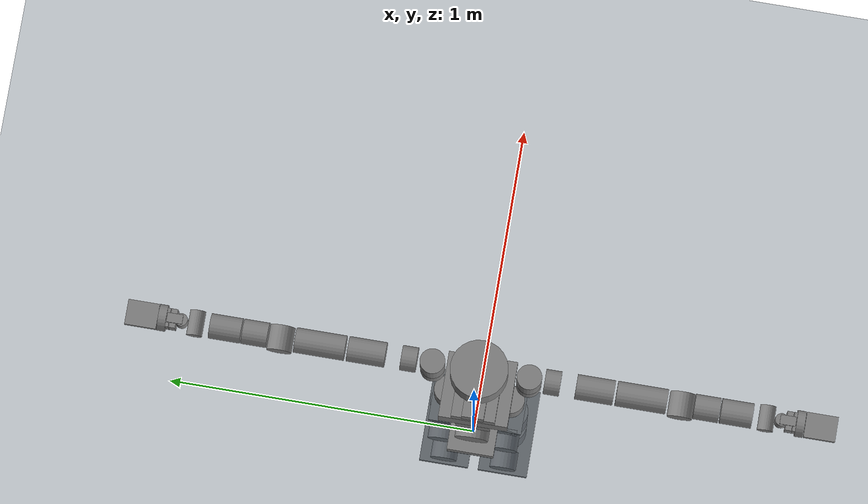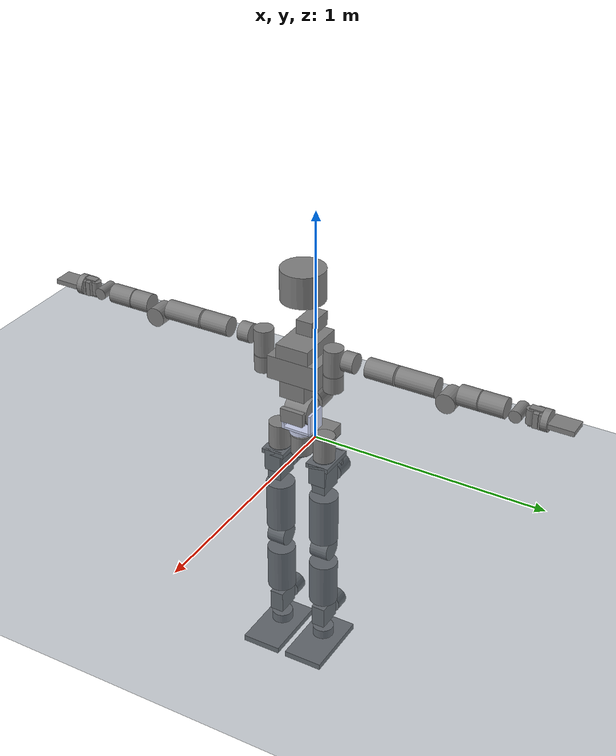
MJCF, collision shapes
<mujoco model="tocabi">
  <compiler angle="radian"/>

  <visual>
    <headlight diffuse="0.6 0.6 0.6" ambient="0.1 0.1 0.1" specular="0.9 0.9 0.9"/>
    <rgba haze="0.15 0.25 0.35 1"/>
    <global azimuth="-140" elevation="-20"/>
  </visual>

  <asset>
    <texture name="texplane" builtin="checker" height="512" width="512" rgb1=".2 .3 .4" rgb2=".1 .15 .2" type="2d"/>
    <material name="MatPlane" reflectance="0.5" shininess="0.01" specular="0.1" texrepeat="1 1" texture="texplane" texuniform="true"/>
    <mesh name="Pelvis_link2" content_type="model/obj" file="meshes/obj/Pelvis_link2.obj"/>
    <mesh name="HipRoll_L_Link" content_type="model/obj" file="meshes/obj/HipRoll_L_Link.obj"/>
    <mesh name="HipCenter_L_Link" content_type="model/obj" file="meshes/obj/HipCenter_L_Link.obj"/>
    <mesh name="Thigh_L_Link" content_type="model/obj" file="meshes/obj/Thigh_L_Link.obj"/>
    <mesh name="Knee_L_Link" content_type="model/obj" file="meshes/obj/Knee_L_Link.obj"/>
    <mesh name="AnkleCenter_L_Link" content_type="model/obj" file="meshes/obj/AnkleCenter_L_Link.obj"/>
    <mesh name="AnkleRoll_L_Link" content_type="model/obj" file="meshes/obj/AnkleRoll_L_Link.obj"/>
    <mesh name="Foot_Link" content_type="model/obj" file="meshes/obj/Foot_Link.obj"/>
    <mesh name="HipRoll_R_Link" content_type="model/obj" file="meshes/obj/HipRoll_R_Link.obj"/>
    <mesh name="HipCenter_R_Link" content_type="model/obj" file="meshes/obj/HipCenter_R_Link.obj"/>
    <mesh name="Thigh_R_Link" content_type="model/obj" file="meshes/obj/Thigh_R_Link.obj"/>
    <mesh name="Knee_R_Link" content_type="model/obj" file="meshes/obj/Knee_R_Link.obj"/>
    <mesh name="AnkleCenter_R_Link" content_type="model/obj" file="meshes/obj/AnkleCenter_R_Link.obj"/>
    <mesh name="AnkleRoll_R_Link" content_type="model/obj" file="meshes/obj/AnkleRoll_R_Link.obj"/>
    <mesh name="waist1" content_type="model/obj" file="meshes/obj/waist1.obj"/>
    <mesh name="waist2" content_type="model/obj" file="meshes/obj/waist2.obj"/>
    <mesh name="upperbody" content_type="model/obj" file="meshes/obj/upperbody.obj"/>
    <mesh name="L_shoulder1" content_type="model/obj" file="meshes/obj/L_shoulder1.obj"/>
    <mesh name="L_shoulder2" content_type="model/obj" file="meshes/obj/L_shoulder2.obj"/>
    <mesh name="L_shoulder3" content_type="model/obj" file="meshes/obj/L_shoulder3.obj"/>
    <mesh name="L_arm" content_type="model/obj" file="meshes/obj/L_arm.obj"/>
    <mesh name="L_elbow" content_type="model/obj" file="meshes/obj/L_elbow.obj"/>
    <mesh name="L_forearm" content_type="model/obj" file="meshes/obj/L_forearm.obj"/>
    <mesh name="L_wrist1" content_type="model/obj" file="meshes/obj/L_wrist1.obj"/>
    <mesh name="neck" content_type="model/obj" file="meshes/obj/neck.obj"/>
    <mesh name="head_v1" content_type="model/obj" file="meshes/obj/head_v1.obj"/>
    <mesh name="R_shoulder1" content_type="model/obj" file="meshes/obj/R_shoulder1.obj"/>
    <mesh name="R_shoulder2" content_type="model/obj" file="meshes/obj/R_shoulder2.obj"/>
    <mesh name="R_shoulder3" content_type="model/obj" file="meshes/obj/R_shoulder3.obj"/>
    <mesh name="R_arm" content_type="model/obj" file="meshes/obj/R_arm.obj"/>
    <mesh name="R_elbow" content_type="model/obj" file="meshes/obj/R_elbow.obj"/>
    <mesh name="R_forearm" content_type="model/obj" file="meshes/obj/R_forearm.obj"/>
    <mesh name="R_wrist1" content_type="model/obj" file="meshes/obj/R_wrist1.obj"/>
  </asset>

  <worldbody>
    <geom name="ground" type="plane" size="10 10 0.1" pos="0 0 0" material="MatPlane"/>
    <light pos="0 0 1000" castshadow="true"/>
    <body name="Pelvis_Link">
      <inertial pos="0.07809 0 0.03985" quat="0.478118 0.476462 -0.52201 0.521433" mass="12.1952" diaginertia="0.14482 0.101492 0.0724004"/>
      <joint name="floating_base_joint" type="free"/>
      <geom pos="0.11 0 0.02" quat="1 0 0 0" type="mesh" contype="0" conaffinity="0" group="1" density="0" mesh="Pelvis_link2"/>
      <geom size="0.045 0.044" pos="0.11 0 0.039" type="cylinder"/>
      <geom size="0.045 0.055" pos="0.11 0.1025 0.05" type="cylinder"/>
      <geom size="0.045 0.055" pos="0.11 -0.1025 0.05" type="cylinder"/>
      <geom size="0.06 0.07625 0.0275" pos="-0.015 0 0.02" type="box"/>
      <body name="L_HipRoll_Link" pos="0.11 0.1025 -0.1025">
        <inertial pos="-0.06477 0 0.05149" quat="-4.55125e-06 0.706109 4.5641e-06 0.708103" mass="2.679" diaginertia="0.114073 0.114073 0.114073"/>
        <joint name="L_HipYaw_Joint" pos="0 0 0" axis="0 0 1" range="-3.14 3.14" actuatorfrcrange="-333 333" damping="1"/>
        <geom type="mesh" contype="0" conaffinity="0" group="1" density="0" mesh="HipRoll_L_Link"/>
        <geom size="0.045 0.04" pos="-0.1 0 0" quat="0.707107 0 0.707107 0" type="cylinder"/>
        <geom size="0.077 0.05 0.01" pos="-0.016 0 0.085" type="box"/>
        <geom size="0.006 0.036 0.0475" pos="0.055 0 0.0475" type="box"/>
        <geom size="0.006 0.036 0.0475" pos="-0.087 0 0.0475" type="box"/>
        <body name="L_HipCenter_Link">
          <inertial pos="-0.04801 0.0022 2e-05" quat="0.999982 -0.00595644 4.6683e-06 -2.7807e-08" mass="2.67" diaginertia="0.124407 0.124407 0.124407"/>
          <joint name="L_HipRoll_Joint" pos="0 0 0" axis="1 0 0" range="-3.14 3.14" actuatorfrcrange="-232 232" damping="1"/>
          <geom type="mesh" contype="0" conaffinity="0" group="1" density="0" mesh="HipCenter_L_Link"/>
          <geom size="0.05225 0.03 0.0475" pos="-0.0045 0 0" type="box"/>
          <body name="L_Thigh_Link">
            <inertial pos="-0.00042 0.00032 -0.18904" quat="0.707068 0.00145661 -0.000977354 0.707144" mass="5.366" diaginertia="0.339107 0.339107 0.339107"/>
            <joint name="L_HipPitch_Joint" pos="0 0 0" axis="0 1 0" range="-3.14 3.14" actuatorfrcrange="-263 263" damping="1"/>
            <geom type="mesh" contype="0" conaffinity="0" group="1" density="0" mesh="Thigh_L_Link"/>
            <geom size="0.049 0.038815" pos="0 0 -0.35" quat="0.707107 0.707107 0 0" type="cylinder"/>
            <geom size="0.06 0.10875" pos="0 0 -0.1923" type="cylinder"/>
            <body name="L_Knee_Link" pos="0 0 -0.35">
              <inertial pos="0.00429 -0.00214 -0.1428" quat="0.707067 0.00548297 0.00738884 0.707087" mass="3.883" diaginertia="0.23895 0.23895 0.23895"/>
              <joint name="L_Knee_Joint" pos="0 0 0" axis="0 1 0" range="-3.14 3.14" actuatorfrcrange="-289 289" damping="1"/>
              <geom type="mesh" contype="0" conaffinity="0" group="1" density="0" mesh="Knee_L_Link"/>
              <geom size="0.06 0.1" pos="0 0 -0.175" type="cylinder"/>
              <body name="L_AnkleCenter_Link" pos="0 0 -0.35">
                <inertial pos="-0.00419 0.0018 -0.0003" quat="0.498858 0.50114 0.501134 0.498863" mass="2.51" diaginertia="0.139901 0.139901 0.139901"/>
                <joint name="L_AnklePitch_Joint" pos="0 0 0" axis="0 1 0" range="-3.14 3.14" actuatorfrcrange="-222 222" damping="1"/>
                <geom type="mesh" contype="0" conaffinity="0" group="1" density="0" mesh="AnkleCenter_L_Link"/>
                <geom size="0.05225 0.03 0.0475" pos="-0.0045 0 0" type="box"/>
                <body name="L_AnkleRoll_Link">
                  <inertial pos="-0.00780159 6.94359e-05 -0.0860385" quat="0.36349 0.606978 0.605974 0.36366" mass="3.59026" diaginertia="0.168928 0.165268 0.153237"/>
                  <joint name="L_AnkleRoll_Joint" pos="0 0 0" axis="1 0 0" range="-3.14 3.14" actuatorfrcrange="-166 166" damping="1"/>
                  <geom type="mesh" contype="0" conaffinity="0" group="1" density="0" mesh="AnkleRoll_L_Link"/>
                  <geom size="0.045 0.03125" pos="-0.08875 0 0" quat="0.707107 0 -0.707107 0" type="cylinder"/>
                  <geom type="mesh" contype="0" conaffinity="0" group="1" density="0" mesh="Foot_Link"/>
                  <geom size="0.045 0.02125" pos="0 0 -0.1" type="cylinder"/>
                  <geom size="0.15 0.085 0.0135" pos="0.03 0 -0.145" type="box"/>
                </body>
              </body>
            </body>
          </body>
        </body>
      </body>
      <body name="R_HipRoll_Link" pos="0.11 -0.1025 -0.1025">
        <inertial pos="-0.06477 0 0.05149" quat="-4.55125e-06 0.706109 4.5641e-06 0.708103" mass="2.679" diaginertia="0.114073 0.114073 0.114073"/>
        <joint name="R_HipYaw_Joint" pos="0 0 0" axis="0 0 1" range="-3.14 3.14" actuatorfrcrange="-333 333" damping="1"/>
        <geom type="mesh" contype="0" conaffinity="0" group="1" density="0" mesh="HipRoll_R_Link"/>
        <geom size="0.045 0.04" pos="-0.1 0 0" quat="0.707107 0 0.707107 0" type="cylinder"/>
        <geom size="0.077 0.05 0.01" pos="-0.016 0 0.085" type="box"/>
        <geom size="0.006 0.036 0.0475" pos="0.055 0 0.0475" type="box"/>
        <geom size="0.006 0.036 0.0475" pos="-0.087 0 0.0475" type="box"/>
        <body name="R_HipCenter_Link" quat="1 0 0 0">
          <inertial pos="-0.04801 -0.0022 2e-05" quat="0.999982 -0.00595644 4.6683e-06 -2.7807e-08" mass="2.67" diaginertia="0.124407 0.124407 0.124407"/>
          <joint name="R_HipRoll_Joint" pos="0 0 0" axis="1 0 0" range="-3.14 3.14" actuatorfrcrange="-232 232" damping="1"/>
          <geom type="mesh" contype="0" conaffinity="0" group="1" density="0" mesh="HipCenter_R_Link"/>
          <geom size="0.05225 0.03 0.0475" pos="-0.0045 0 0" type="box"/>
          <body name="R_Thigh_Link" quat="1 0 0 0">
            <inertial pos="-0.00042 -0.00032 -0.18904" quat="0.707068 0.00145661 -0.000977354 0.707144" mass="5.366" diaginertia="0.339107 0.339107 0.339107"/>
            <joint name="R_HipPitch_Joint" pos="0 0 0" axis="0 1 0" range="-3.14 3.14" actuatorfrcrange="-263 263" damping="1"/>
            <geom type="mesh" contype="0" conaffinity="0" group="1" density="0" mesh="Thigh_R_Link"/>
            <geom size="0.049 0.038815" pos="0 0 -0.35" quat="0.707107 0.707107 0 0" type="cylinder"/>
            <geom size="0.06 0.10875" pos="0 0 -0.1923" type="cylinder"/>
            <body name="R_Knee_Link" pos="0 0 -0.35">
              <inertial pos="0.00429 0.00214 -0.1428" quat="0.707067 0.00548297 0.00738884 0.707087" mass="3.883" diaginertia="0.23895 0.23895 0.23895"/>
              <joint name="R_Knee_Joint" pos="0 0 0" axis="0 1 0" range="-3.14 3.14" actuatorfrcrange="-289 289" damping="1"/>
              <geom type="mesh" contype="0" conaffinity="0" group="1" density="0" mesh="Knee_R_Link"/>
              <geom size="0.06 0.1" pos="0 0 -0.175" type="cylinder"/>
              <body name="R_AnkleCenter_Link" pos="0 0 -0.35" quat="1 0 0 0">
                <inertial pos="-0.00419 -0.0018 -0.0003" quat="0.498858 0.50114 0.501134 0.498863" mass="2.51" diaginertia="0.139901 0.139901 0.139901"/>
                <joint name="R_AnklePitch_Joint" pos="0 0 0" axis="0 1 0" range="-3.14 3.14" actuatorfrcrange="-222 222" damping="1"/>
                <geom type="mesh" contype="0" conaffinity="0" group="1" density="0" mesh="AnkleCenter_R_Link"/>
                <geom size="0.05225 0.03 0.0475" pos="-0.0045 0 0" type="box"/>
                <body name="R_AnkleRoll_Link">
                  <inertial pos="-0.00780159 6.94359e-05 -0.0860385" quat="0.36349 0.606978 0.605974 0.36366" mass="3.59026" diaginertia="0.168928 0.165268 0.153237"/>
                  <joint name="R_AnkleRoll_Joint" pos="0 0 0" axis="1 0 0" range="-3.14 3.14" actuatorfrcrange="-166 166" damping="1"/>
                  <geom type="mesh" contype="0" conaffinity="0" group="1" density="0" mesh="AnkleRoll_R_Link"/>
                  <geom size="0.045 0.03125" pos="-0.08875 0 0" quat="0.707107 0 -0.707107 0" type="cylinder"/>
                  <geom type="mesh" contype="0" conaffinity="0" group="1" density="0" mesh="Foot_Link"/>
                  <geom size="0.045 0.02125" pos="0 0 -0.1" type="cylinder"/>
                  <geom size="0.15 0.085 0.0135" pos="0.03 0 -0.145" type="box"/>
                </body>
              </body>
            </body>
          </body>
        </body>
      </body>
      <body name="Waist1_Link" pos="0.11 0 0.1979">
        <inertial pos="0 0 -0.03647" quat="0.503317 0.49668 -0.503508 0.496449" mass="0.89722" diaginertia="0.337833 0.337833 0.337833"/>
        <joint name="Waist1_Joint" pos="0 0 0" axis="0 0 1" range="-2.094 2.094" actuatorfrcrange="-303 303" damping="1"/>
        <geom type="mesh" contype="0" conaffinity="0" group="1" density="0" mesh="waist1"/>
        <geom size="0.05 0.01" pos="0 0 -0.096" type="cylinder" contype="0" conaffinity="0" group="1" density="0" rgba="0.792157 0.819608 0.933333 1"/>
        <geom size="0.05 0.01" pos="0 0 -0.096" type="cylinder" rgba="0.792157 0.819608 0.933333 1"/>
        <geom size="0.047 0.065 0.005" pos="0 0 -0.081" type="box" rgba="0.792157 0.819608 0.933333 1"/>
        <geom size="0.047 0.005 0.0455" pos="0 0.06 -0.0405" type="box" rgba="0.792157 0.819608 0.933333 1"/>
        <geom size="0.047 0.005 0.0455" pos="0 -0.06 -0.0405" type="box" rgba="0.792157 0.819608 0.933333 1"/>
        <body name="Waist2_Link">
          <inertial pos="-0.00029 0 0" quat="0.500003 0.500003 0.499997 0.499997" mass="3.752" diaginertia="0.341764 0.341764 0.341764"/>
          <joint name="Waist2_Joint" pos="0 0 0" axis="0 1 0" range="-2.094 2.094" actuatorfrcrange="-303 303" damping="1"/>
          <geom type="mesh" contype="0" conaffinity="0" group="1" density="0" mesh="waist2"/>
          <geom size="0.055 0.05" quat="0.707107 0.707107 0 0" type="cylinder"/>
          <geom size="0.01 0.05 0.03" pos="0.07 0 0" type="box"/>
          <geom size="0.054 0.045" pos="-0.115 0 0" quat="0.707107 0 0.707107 0" type="cylinder"/>
          <body name="Upperbody_Link">
            <inertial pos="-0.0608 0.0017 0.1077" quat="0.983619 0.00362339 0.180208 0.00228502" mass="20.034" diaginertia="0.325001 0.293503 0.197696"/>
            <joint name="Upperbody_Joint" pos="0 0 0" axis="-1 0 0" range="-2.094 2.094" actuatorfrcrange="-303 303" damping="1"/>
            <geom type="mesh" contype="0" conaffinity="0" group="1" density="0" mesh="upperbody"/>
            <geom size="0.105 0.11 0.05" pos="-0.03 0 0.2" type="box" contype="0" conaffinity="0" group="1" density="0"/>
            <geom size="0.105 0.055 0.035" pos="-0.03 0 0.115" type="box" contype="0" conaffinity="0" group="1" density="0"/>
            <geom size="0.105 0.07 0.03" pos="-0.03 0 0.28" type="box" contype="0" conaffinity="0" group="1" density="0"/>
            <geom size="0.105 0.11 0.05" pos="-0.03 0 0.2" type="box"/>
            <geom size="0.105 0.055 0.035" pos="-0.03 0 0.115" type="box"/>
            <geom size="0.105 0.07 0.03" pos="-0.03 0 0.28" type="box"/>
            <geom size="0.06 0.035 0.03" pos="-0.08 0 0.35" type="box"/>
            <geom size="0.04 0.035" pos="0.023 0.154 0.185" type="cylinder"/>
            <geom size="0.04 0.035" pos="0.023 -0.154 0.185" type="cylinder"/>
            <body name="L_Shoulder1_Link" pos="0.023 0.154 0.2275">
              <inertial pos="-3e-05 0.00397 0.06029" quat="0.0454 0.705652 -0.0450956 0.705663" mass="1.6762" diaginertia="0.0630641 0.0630641 0.0630641"/>
              <joint name="L_Shoulder1_Joint" pos="0 0 0" axis="0 0 1" range="-2.09 1.54" actuatorfrcrange="-64 64" damping="1"/>
              <geom type="mesh" contype="0" conaffinity="0" group="1" density="0" mesh="L_shoulder1"/>
              <geom size="0.04 0.055" pos="0 0 0.05" type="cylinder"/>
              <body name="L_Shoulder2_Link" pos="0 0.0341 0.065">
                <inertial pos="0.00107 0.0491 -1e-05" quat="0.501533 0.49854 0.498463 0.501456" mass="0.4016" diaginertia="0.0621111 0.0621111 0.0621111"/>
                <joint name="L_Shoulder2_Joint" pos="0 0 0" axis="0 1 0" range="-3.14159 3.14159" actuatorfrcrange="-64 64" damping="1"/>
                <geom type="mesh" contype="0" conaffinity="0" group="1" density="0" mesh="L_shoulder2"/>
                <geom size="0.04 0.025" pos="0 0.04 0" quat="0.707107 0.707107 0 0" type="cylinder"/>
                <body name="L_Shoulder3_Link" pos="0 0.115 0">
                  <inertial pos="0.00262 0.04826 0.00023" quat="0.705654 0.708556 -0.000676974 -0.000684567" mass="2.90141" diaginertia="0.0676279 0.0676279 0.0676279"/>
                  <joint name="L_Shoulder3_Joint" pos="0 0 0" axis="-1 0 0" range="-1.9199 1.9199" actuatorfrcrange="-64 64" damping="1"/>
                  <geom type="mesh" contype="0" conaffinity="0" group="1" density="0" mesh="L_shoulder3"/>
                  <geom size="0.04 0.06" pos="0 0.06 0" quat="0.707107 0.707107 0 0" type="cylinder"/>
                  <body name="L_Armlink_Link" pos="0 0.1281 0">
                    <inertial pos="-0.01896 0.11642 -0.0119" quat="0.535859 0.462264 0.460318 0.53598" mass="0.58517" diaginertia="0.0634592 0.0634592 0.0634592"/>
                    <joint name="L_Armlink_Joint" pos="0 0 0" axis="0 1 0" range="-3.14159 3.14159" actuatorfrcrange="-64 64" damping="1"/>
                    <geom type="mesh" contype="0" conaffinity="0" group="1" density="0" mesh="L_arm"/>
                    <geom size="0.04 0.08" pos="0 0.08 0" quat="0.707107 0.707107 0 0" type="cylinder"/>
                    <body name="L_Elbow_Link" pos="0 0.207 -0.0325">
                      <inertial pos="-0.00136 0.05256 0.01764" quat="0.811557 0.584271 0.00034747 0.00150314" mass="2.06511" diaginertia="0.0212399 0.0212399 0.0212399"/>
                      <joint name="L_Elbow_Joint" pos="0 0 0" axis="1 0 0" range="-3.14159 2.8" actuatorfrcrange="-23 23" damping="1"/>
                      <geom type="mesh" contype="0" conaffinity="0" group="1" density="0" mesh="L_elbow"/>
                      <geom size="0.04 0.04" pos="0 0.08 0.0325" quat="0.707107 0.707107 0 0" type="cylinder"/>
                      <geom size="0.04 0.04" quat="0.707107 0 0.707107 0" type="cylinder"/>
                      <body name="L_Forearm_Link" pos="0 0.1244 0.0325">
                        <inertial pos="-0.01426 0.0767 0.00033" quat="0.474096 0.525451 0.524351 0.473487" mass="0.35234" diaginertia="0.0174032 0.0174032 0.0174032"/>
                        <joint name="L_Forearm_Joint" pos="0 0 0" axis="0 1 0" range="-3.14159 3.14159" actuatorfrcrange="-23 23" damping="1"/>
                        <geom type="mesh" contype="0" conaffinity="0" group="1" density="0" mesh="L_forearm"/>
                        <geom size="0.04 0.05" pos="0 0.05 0" quat="0.707107 0.707107 0 0" type="cylinder"/>
                        <geom size="0.025 0.04" pos="0 0.1451 0" quat="0.707107 0 0.707107 0" type="cylinder"/>
                        <body name="L_Wrist1_Link" pos="0 0.1451 0">
                          <inertial pos="-0.00158 0.02153 3e-05" quat="0.707955 0.706258 0.000583865 0.000572501" mass="0.70923" diaginertia="0.00542825 0.00542825 0.00542825"/>
                          <joint name="L_Wrist1_Joint" pos="0 0 0" axis="1 0 0" range="-3.14159 3.14159" actuatorfrcrange="-10 10" damping="1"/>
                          <geom type="mesh" contype="0" conaffinity="0" group="1" density="0" mesh="L_wrist1"/>
                          <geom size="0.02 0.03" pos="0 0.046 0" type="cylinder"/>
                          <body name="L_Wrist2_Link" pos="0 0.046 0" quat="3.27579e-05 3.27581e-05 0.707105 -0.707108">
                            <inertial pos="0.00063 0.0636 0.00178" quat="0.5 0.5 -0.5 0.5" mass="0.1" diaginertia="0.00564673 0.00564673 0.00564673"/>
                            <joint name="L_Wrist2_Joint" pos="0 0 0" axis="0 1 0" range="-2.094 2.094" actuatorfrcrange="-10 10" damping="1"/>
                            <geom size="0.015 0.0025 0.025" pos="0 0.035 -0.02" type="box" contype="0" conaffinity="0" group="1" density="0"/>
                            <geom size="0.015 0.0025 0.025" pos="0 -0.035 -0.02" type="box" contype="0" conaffinity="0" group="1" density="0"/>
                            <geom size="0.03 0.03 0.005" pos="0 0 -0.042" type="box" contype="0" conaffinity="0" group="1" density="0"/>
                            <geom size="0.042 0.013" pos="0 0 -0.06" type="cylinder" contype="0" conaffinity="0" group="1" density="0"/>
                            <geom size="0.04 0.01 0.05" pos="0 0 -0.126" type="box" contype="0" conaffinity="0" group="1" density="0"/>
                            <geom size="0.03 0.03 0.01" pos="0 0 -0.025" type="box"/>
                          </body>
                        </body>
                      </body>
                    </body>
                  </body>
                </body>
              </body>
            </body>
            <body name="Neck_Link" pos="-0.036 0 0.3795">
              <inertial pos="-0.0004 -0.002 0.02576" quat="0.635583 0.664622 -0.284996 0.270349" mass="0.404" diaginertia="5.85426e-05 5.79997e-05 3.64427e-05"/>
              <joint name="Neck_Joint" pos="0 0 0" axis="0 0 1" range="-1.54 1.54" actuatorfrcrange="-10 10" damping="1"/>
              <geom type="mesh" contype="0" conaffinity="0" group="1" density="0" mesh="neck"/>
              <body name="Head_Link" pos="0 0 0.0275">
                <inertial pos="0.0372 0 0.0708" quat="0.334096 0.623201 0.623201 0.334096" mass="1.417" diaginertia="0.012 0.0116615 0.00623845"/>
                <joint name="Head_Joint" pos="0 0 0" axis="0 1 0" range="-1.54 1.54" actuatorfrcrange="-10 10" damping="1"/>
                <geom type="mesh" contype="0" conaffinity="0" group="1" density="0" mesh="head_v1"/>
                <geom size="0.09 0.065" pos="0.02 0 0.14" type="cylinder"/>
              </body>
            </body>
            <body name="R_Shoulder1_Link" pos="0.023 -0.154 0.2275">
              <inertial pos="-3e-05 -0.00397 0.06029" quat="-0.0454 0.705652 0.0450956 0.705663" mass="1.6762" diaginertia="0.0630641 0.0630641 0.0630641"/>
              <joint name="R_Shoulder1_Joint" pos="0 0 0" axis="0 0 1" range="-2.09 1.54" actuatorfrcrange="-64 64" damping="1"/>
              <geom type="mesh" contype="0" conaffinity="0" group="1" density="0" mesh="R_shoulder1"/>
              <geom size="0.04 0.055" pos="0 0 0.05" type="cylinder"/>
              <body name="R_Shoulder2_Link" pos="0 -0.0341 0.065">
                <inertial pos="0.00107 -0.0491 -1e-05" quat="0.501456 0.498463 0.49854 0.501533" mass="0.4016" diaginertia="0.0621111 0.0621111 0.0621111"/>
                <joint name="R_Shoulder2_Joint" pos="0 0 0" axis="0 -1 0" range="-3.14159 3.14159" actuatorfrcrange="-64 64" damping="1"/>
                <geom type="mesh" contype="0" conaffinity="0" group="1" density="0" mesh="R_shoulder2"/>
                <geom size="0.04 0.025" pos="0 -0.04 0" quat="0.707107 0.707107 0 0" type="cylinder"/>
                <body name="R_Shoulder3_Link" pos="0 -0.115 0">
                  <inertial pos="0.00262 -0.04826 0.00023" quat="0.708556 0.705654 0.000684567 0.000676974" mass="2.90141" diaginertia="0.0676279 0.0676279 0.0676279"/>
                  <joint name="R_Shoulder3_Joint" pos="0 0 0" axis="-1 0 0" range="-1.9199 1.9199" actuatorfrcrange="-64 64" damping="1"/>
                  <geom type="mesh" contype="0" conaffinity="0" group="1" density="0" mesh="R_shoulder3"/>
                  <geom size="0.04 0.06" pos="0 -0.06 0" quat="0.707107 0.707107 0 0" type="cylinder"/>
                  <body name="R_Armlink_Link" pos="0 -0.1281 0">
                    <inertial pos="-0.01896 -0.11642 -0.0119" quat="0.53598 0.460318 0.462264 0.535859" mass="0.58517" diaginertia="0.0634592 0.0634592 0.0634592"/>
                    <joint name="R_Armlink_Joint" pos="0 0 0" axis="0 -1 0" range="-3.14159 3.14159" actuatorfrcrange="-64 64" damping="1"/>
                    <geom type="mesh" contype="0" conaffinity="0" group="1" density="0" mesh="R_arm"/>
                    <geom size="0.04 0.08" pos="0 -0.08 0" quat="0.707107 0.707107 0 0" type="cylinder"/>
                    <body name="R_Elbow_Link" pos="0 -0.207 -0.0325">
                      <inertial pos="-0.00136 -0.05256 0.01764" quat="0.584271 0.811557 -0.00150314 -0.00034747" mass="2.06511" diaginertia="0.0212399 0.0212399 0.0212399"/>
                      <joint name="R_Elbow_Joint" pos="0 0 0" axis="1 0 0" range="-2.967 3.14159" actuatorfrcrange="-23 23" damping="1"/>
                      <geom type="mesh" contype="0" conaffinity="0" group="1" density="0" mesh="R_elbow"/>
                      <geom size="0.04 0.04" pos="0 -0.08 0.0325" quat="0.707107 0.707107 0 0" type="cylinder"/>
                      <geom size="0.04 0.04" quat="0.707107 0 0.707107 0" type="cylinder"/>
                      <body name="R_Forearm_Link" pos="0 -0.1244 0.0325">
                        <inertial pos="-0.01426 -0.0767 0.00033" quat="0.473487 0.524351 0.525451 0.474096" mass="0.35234" diaginertia="0.0174032 0.0174032 0.0174032"/>
                        <joint name="R_Forearm_Joint" pos="0 0 0" axis="0 -1 0" range="-3.14159 3.14159" actuatorfrcrange="-23 23" damping="1"/>
                        <geom type="mesh" contype="0" conaffinity="0" group="1" density="0" mesh="R_forearm"/>
                        <geom size="0.04 0.05" pos="0 -0.05 0" quat="0.707107 0.707107 0 0" type="cylinder"/>
                        <geom size="0.025 0.04" pos="0 -0.1451 0" quat="0.707107 0 0.707107 0" type="cylinder"/>
                        <body name="R_Wrist1_Link" pos="0 -0.1451 0">
                          <inertial pos="-0.00158 -0.02153 3e-05" quat="0.706258 0.707955 -0.000572501 -0.000583865" mass="0.70923" diaginertia="0.00542825 0.00542825 0.00542825"/>
                          <joint name="R_Wrist1_Joint" pos="0 0 0" axis="1 0 0" range="-3.14159 3.14159" actuatorfrcrange="-10 10" damping="1"/>
                          <geom type="mesh" contype="0" conaffinity="0" group="1" density="0" mesh="R_wrist1"/>
                          <geom size="0.02 0.03" pos="0 -0.046 0" type="cylinder"/>
                          <body name="R_Wrist2_Link" pos="0 -0.046 0" quat="3.27579e-05 -3.27581e-05 0.707105 0.707108">
                            <inertial pos="0.00063 -0.0636 0.00178" quat="0.5 0.5 -0.5 0.5" mass="0.1" diaginertia="0.00564673 0.00564673 0.00564673"/>
                            <joint name="R_Wrist2_Joint" pos="0 0 0" axis="0 -1 0" range="-2.094 2.094" actuatorfrcrange="-10 10" damping="1"/>
                            <geom size="0.015 0.0025 0.025" pos="0 0.035 -0.02" type="box" contype="0" conaffinity="0" group="1" density="0"/>
                            <geom size="0.015 0.0025 0.025" pos="0 -0.035 -0.02" type="box" contype="0" conaffinity="0" group="1" density="0"/>
                            <geom size="0.03 0.03 0.005" pos="0 0 -0.042" type="box" contype="0" conaffinity="0" group="1" density="0"/>
                            <geom size="0.042 0.013" pos="0 0 -0.06" type="cylinder" contype="0" conaffinity="0" group="1" density="0"/>
                            <geom size="0.04 0.01 0.05" pos="0 0 -0.126" type="box" contype="0" conaffinity="0" group="1" density="0"/>
                            <geom size="0.03 0.03 0.01" pos="0 0 -0.025" type="box"/>
                          </body>
                        </body>
                      </body>
                    </body>
                  </body>
                </body>
              </body>
            </body>
          </body>
        </body>
      </body>
    </body>
  </worldbody>
</mujoco>
